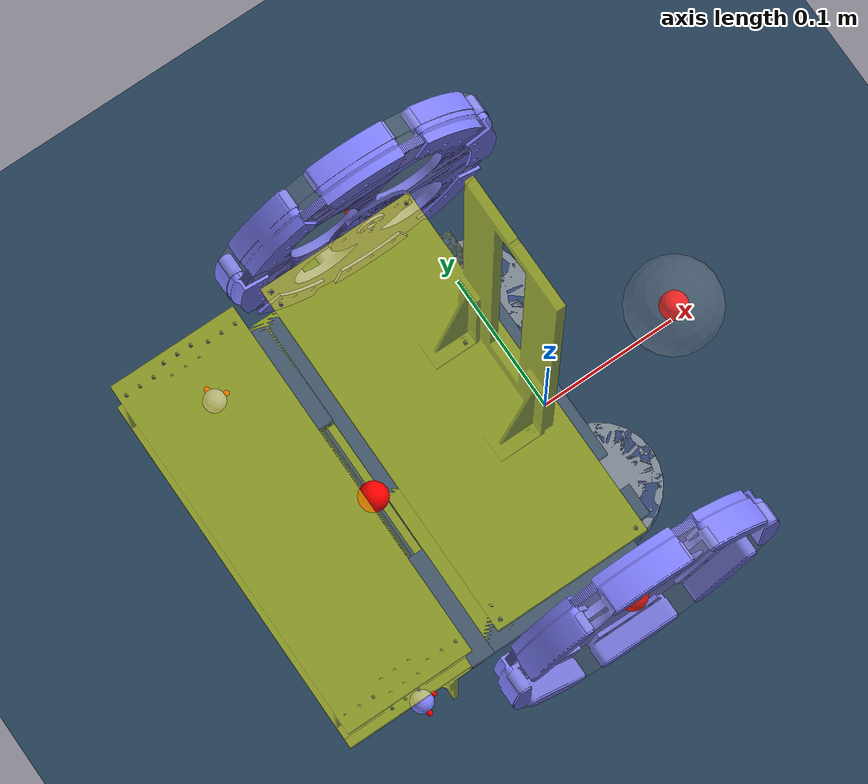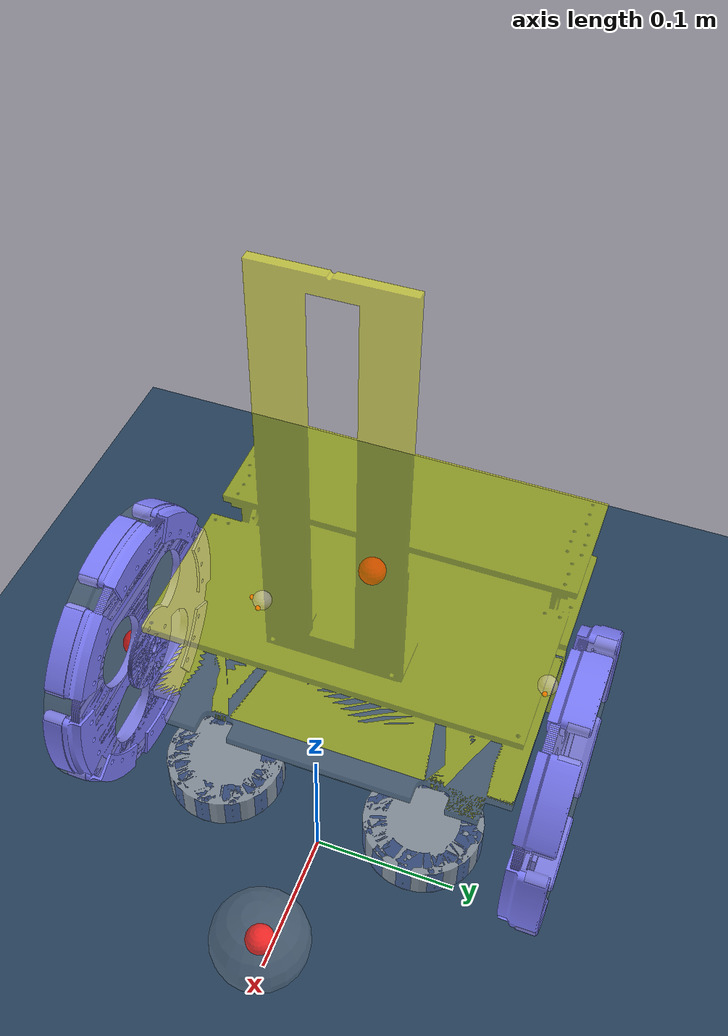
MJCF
<mujoco model="tennisbot">
  <compiler angle="degree" autolimits="true"/>
  <option gravity="0 0 -9.81" timestep="0.002" />

  <asset>
    <!-- Environment-->
    <texture name="grid" type="2d" builtin="checker" width="512" height="512" rgb1=".1 .2 .3" rgb2=".2 .3 .4"/>
    <material name="grid" texture="grid" texrepeat="1 1" texuniform="true" reflectance=".2"/>

    <!-- Texture-->

    <!-- Mesh -->
    <mesh name="visual_chassis_mesh" file="../mesh/visual/Visual_Chassis.stl" scale="1 1 1"/>
    <mesh name="visual_wheel_mesh" file="../mesh/visual/Visual_Wheel.stl" scale="1 1 1"/>
    <mesh name="visual_friction_wheel_mesh" file="../mesh/visual/Visual_Friction_Wheel.stl" scale="1 1 1"/>

    <mesh name="collision_inlet_base_mesh_1" file="../mesh/collision/Collision_Chassis_InletBase_1_1.stl" scale="1 1 1"/>
    <mesh name="collision_inlet_base_mesh_2" file="../mesh/collision/Collision_Chassis_InletBase_1_2.stl" scale="1 1 1"/>
    <mesh name="collision_inlet_base_mesh_3" file="../mesh/collision/Collision_Chassis_InletBase_1_3.stl" scale="1 1 1"/>

    <mesh name="collision_inlet_passage_mesh_1" file="../mesh/collision/Collision_Chassis_InletPassage_1_1.stl" scale="1 1 1"/>
    <mesh name="collision_inlet_passage_mesh_2" file="../mesh/collision/Collision_Chassis_InletPassage_1_2.stl" scale="1 1 1"/>
    <mesh name="collision_inlet_passage_mesh_3" file="../mesh/collision/Collision_Chassis_InletPassage_1_3.stl" scale="1 1 1"/>
    <mesh name="collision_inlet_passage_mesh_4" file="../mesh/collision/Collision_Chassis_InletPassage_1_4.stl" scale="1 1 1"/>
    <mesh name="collision_inlet_passage_mesh_5" file="../mesh/collision/Collision_Chassis_InletPassage_1_5.stl" scale="1 1 1"/>
    <mesh name="collision_inlet_passage_mesh_6" file="../mesh/collision/Collision_Chassis_InletPassage_1_6.stl" scale="1 1 1"/>

    <mesh name="collision_wheel_mesh" file="../mesh/collision/Collision_WheelSimplified.stl" scale="1 1 1"/>

    <!-- Material-->
    <material name="visual_wheel_material" rgba=".5 .5 1 1"/>
    <material name="collision_wheel_material" rgba=".8 .8 .8 0.1"/>
    <material name="visual_caster_material" rgba=".5 .5 1 1"/>
    <material name="collision_caster_material" rgba=".8 .8 .8 0.1"/>
    <material name="visual_small_marker_material" rgba="1 0 0 1"/>
    <material name="visual_friction_wheel_material" rgba=".5 .5 1 0.2"/>
    <material name="collision_friction_wheel_material" rgba=".8 .8 .8 0.6"/>
    <material name="visual_tennis_ball_material" rgba="0 1 0 0.2"/>
    <material name="collision_tennis_ball_material" rgba=".8 .8 .8 0.1"/>

  </asset>

  <default>
    <joint damping=".03" actuatorfrcrange="-0.5 0.5"/>

    <!-- Wheel-->
    <default class="collision_wheel_geom">
      <geom material="collision_wheel_material"
            type="mesh" mesh="collision_wheel_mesh"
            contype="1" conaffinity="1"
            group="1"
            friction="1.8 0.02 0.002"
            condim="6"
            solref="0.003 1.0"
            solimp="0.9 0.95 0.001"/>
    </default>

    <default class="visual_wheel_geom">
      <geom material="visual_wheel_material"
            type="mesh" mesh="visual_wheel_mesh"
            contype="0" conaffinity="0"
            group="0"/>
    </default>

    <!-- Caster Wheel-->
    <default class="collision_ball_caster_geom">
      <geom material="collision_caster_material"
            type="sphere" size="0.008"
            contype="1" conaffinity="1" group="1"
            friction="1.8 0.002 0.0002"
            condim="3"/>
    </default>

    <default class="visual_ball_caster_geom">
      <geom material="visual_caster_material"
            type="sphere" size="0.008"
            contype="0" conaffinity="0" group="0"/>
    </default>

    <default class="visual_ball_caster_marker_geom">
      <geom material="visual_small_marker_material"
            pos="0.009 0 0"
            type="sphere" size="0.002"
            contype="0" conaffinity="0" group="0"/>
    </default>

    <!-- Friction Wheel-->
    <default class="collision_friction_wheel_geom">
      <geom material="collision_friction_wheel_material"
            type="cylinder" size="0.041 0.012"
            contype="1" conaffinity="1"
            group="1"
            friction="1.8 0.02 0.002"
            condim="6"
            solref="0.003 1.0"
            solimp="0.9 0.95 0.001"/>
    </default>

    <default class="visual_friction_wheel_geom">
      <geom material="visual_friction_wheel_material"
            type="mesh" mesh="visual_friction_wheel_mesh"
            contype="0" conaffinity="0" group="0"/>
    </default>

    <!-- Tennis Ball-->
    <default class="collision_tennis_ball_geom">
      <geom material="collision_tennis_ball_material"
        type="sphere" size="0.0335"
        mass="0.057"
        friction="0.8 0.01 0.001"
        solref="0.02 1.0"
        solimp="0.9 0.95 0.001"/>
    </default>

    <default class="visual_tennis_ball_geom">
      <geom material="visual_tennis_ball_material"
            type="sphere" size="0.0335"
            contype="0" conaffinity="0" group="0"/>
    </default>

  </default>

  <worldbody>
    <!-- GROUND-->
    <geom type="plane" size="3 3 .01" material="grid"/>

    <!-- Balls-->
    <body name="tennis_ball_1" pos="0.1 0 .04">
      <freejoint name="ball_1_free_joint"/>

      <inertial
        pos="0 0 0"
        mass="0.0577"
        diaginertia="2.59015e-05 2.59015e-05 2.59015e-05"/>

      <geom name="collision_tennis_ball_1_geom" class="collision_tennis_ball_geom"/>
      <geom class="visual_tennis_ball_geom"/>

      <site name="tennis_ball_1_com" pos="0 0 0" type="sphere" size="0.01 0.01 0.01" rgba="1 0 0 1" />
    </body>

    <!-- ROBOT-->
    <body name="tennisbot" pos="0 0 .09">
      <freejoint name="base_free_joint"/>

      <!-- Chassis-->
      <body name="inlet_chassis" pos="0 0 0">
        <inertial pos="-0.140985 -0.012924 0.047775" mass="5.419723" fullinertia="0.04314 0.04912 0.05842 -0.00417 0.0003509 -0.0005183"/>
        <site name="inlet_chassis_com" pos="-0.140985 -0.012924 0.047775" type="sphere" size="0.01 0.01 0.01" rgba="1 0 0 1" />

        <!-- collision geom-->
        <geom type="mesh" mesh="collision_inlet_base_mesh_1" contype="1" conaffinity="1" group="1" rgba=".8 .8 .8 0.1" friction="1 0.5 0.1"/>
        <geom type="mesh" mesh="collision_inlet_base_mesh_2" contype="1" conaffinity="1" group="1" rgba=".8 .8 .8 0.1" friction="1 0.5 0.1"/>
        <geom type="mesh" mesh="collision_inlet_base_mesh_3" contype="1" conaffinity="1" group="1" rgba=".8 .8 .8 0.1" friction="1 0.5 0.1"/>

        <geom type="mesh" mesh="collision_inlet_passage_mesh_1" contype="1" conaffinity="1" group="1" rgba=".8 .8 .8 0.1" friction="1 0.5 0.1"/>
        <geom type="mesh" mesh="collision_inlet_passage_mesh_2" contype="1" conaffinity="1" group="1" rgba=".8 .8 .8 0.1" friction="1 0.5 0.1"/>
        <geom type="mesh" mesh="collision_inlet_passage_mesh_3" contype="1" conaffinity="1" group="1" rgba=".8 .8 .8 0.1" friction="1 0.5 0.1"/>
        <geom type="mesh" mesh="collision_inlet_passage_mesh_4" contype="1" conaffinity="1" group="1" rgba=".8 .8 .8 0.1" friction="1 0.5 0.1"/>
        <geom type="mesh" mesh="collision_inlet_passage_mesh_5" contype="1" conaffinity="1" group="1" rgba=".8 .8 .8 0.1" friction="1 0.5 0.1"/>
        <geom type="mesh" mesh="collision_inlet_passage_mesh_6" contype="1" conaffinity="1" group="1" rgba=".8 .8 .8 0.1" friction="1 0.5 0.1"/>

        <!-- visual geom-->
        <geom type="mesh" mesh="visual_chassis_mesh" contype="0" conaffinity="0" group="0" rgba="1 1 0 0.5" />
      </body>

      <!-- Wheels-->
      <body name="left_wheel" pos="-0.041 0.137 0.022" zaxis="0 1 0">
        <joint name="left_wheel_joint" type="hinge" axis="0 0 1" damping=".03" actuatorfrcrange="-0.5 0.5"/>
        <inertial pos="0 0 0.013298" mass="0.195438" fullinertia="0.0007126 0.0007126 0.001403 0 0 0"/>
        <site name="left_wheel_com" pos="0 0 0.013298" type="sphere" size="0.01 0.01 0.01" rgba="1 0 0 1" />
        <geom class="collision_wheel_geom"/>
        <geom class="visual_wheel_geom"/>
      </body>

      <body name="right_wheel" pos="-0.041 -0.137 0.022" zaxis="0 -1 0">
        <joint name="right_wheel_joint" type="hinge" axis="0 0 1" damping=".03" actuatorfrcrange="-0.5 0.5"/>
        <inertial pos="0 0 0.013298" mass="0.195438" fullinertia="0.0007126 0.0007126 0.001403 0 0 0"/>
        <site name="right_wheel_com" pos="0 0 0.013298" type="sphere" size="0.01 0.01 0.01" rgba="1 0 0 1" />
        <geom class="collision_wheel_geom"/>
        <geom class="visual_wheel_geom"/>
      </body>

      <!-- Caster Wheels-->
      <body name="left_ball_caster_mount" pos="-0.178 -0.119 -0.062">
        <!-- The rolling ball -->
        <body name="left_ball_caster" pos="0 0 -0.008">
          <!-- Ball joint: fixed center, free orientation -->
          <joint name="left_ball_caster_joint" type="ball"
                 damping="0.001" frictionloss="0.0005"/>

          <inertial pos="0 0 0" mass="0.08" diaginertia="1.2e-5 1.2e-5 1.2e-5"/>

          <geom name="collision_left_ball_caster_geom" class="collision_ball_caster_geom"/>
          <geom name="visual_left_ball_caster_geom" class="visual_ball_caster_geom"/>
          <geom name="visual_left_ball_caster_marker_geom_1" class="visual_ball_caster_marker_geom"/>
          <geom name="visual_left_ball_caster_marker_geom_2" pos="0 -0.009 0" class="visual_ball_caster_marker_geom"/>
        </body>
      </body>

      <body name="right_ball_caster_mount" pos="-0.178 0.119 -0.062">
        <!-- The rolling ball -->
        <body name="right_ball_caster" pos="0 0 -0.008">
          <!-- Ball joint: fixed center, free orientation -->
          <joint name="right_ball_caster_joint" type="ball"
                 damping="0.001" frictionloss="0.0005"/>

          <inertial pos="0 0 0" mass="0.08" diaginertia="1.2e-5 1.2e-5 1.2e-5"/>

          <geom name="collision_right_ball_caster_geom" class="collision_ball_caster_geom"/>
          <geom name="visual_right_ball_caster_geom" class="visual_ball_caster_geom"/>
          <geom name="visual_right_ball_caster_marker_geom" class="visual_ball_caster_marker_geom"/>
          <geom name="visual_right_ball_caster_marker_geom_2" pos="0 0.009 0" class="visual_ball_caster_marker_geom"/>
        </body>
      </body>

      <!-- Friction Wheels-->
      <body name="left_friction_wheel" pos="-0.010365 0.072832 -0.044" zaxis="0 0 1">
        <joint name="left_friction_wheel_joint" type="hinge" axis="0 0 1" damping=".03" actuatorfrcrange="-0.5 0.5"/>
        <inertial pos="0 0 0" mass="0.010" fullinertia="1e-6 1e-6 1e-6 0 0 0"/>
        <geom name="collision_left_friction_wheel_geom" class="collision_friction_wheel_geom"/>
        <geom class="visual_friction_wheel_geom"/>
      </body>

      <body name="right_friction_wheel" pos="-0.010365 -0.072832 -0.044" zaxis="0 0 1">
        <joint name="right_friction_wheel_joint" type="hinge" axis="0 0 1" damping=".03" actuatorfrcrange="-0.5 0.5"/>
        <inertial pos="0 0 0" mass="0.010" fullinertia="1e-6 1e-6 1e-6 0 0 0"/>
        <geom name="collision_right_friction_wheel_geom" class="collision_friction_wheel_geom"/>
        <geom class="visual_friction_wheel_geom"/>
      </body>

      <!-- IMU-->

      <!-- Cameras-->

    </body>
  </worldbody>

  <!-- Actuators-->
  <actuator>
    <motor name="left_wheel_motor" joint="left_wheel_joint" gear="1"/>
    <motor name="right_wheel_motor" joint="right_wheel_joint" gear="1"/>
    <motor name="left_friction_wheel_motor" joint="left_friction_wheel_joint" gear="10"/>
    <motor name="right_friction_wheel_motor" joint="right_friction_wheel_joint" gear="10"/>
  </actuator>

  <!-- Sensors-->
   <sensor>
    <jointpos name="left_wheel_pos" joint="left_wheel_joint"/>
    <jointpos name="right_wheel_pos" joint="right_wheel_joint"/>
    <jointvel name="left_wheel_vel" joint="left_wheel_joint"/>
    <jointvel name="right_wheel_vel" joint="right_wheel_joint"/>
   </sensor>

  <contact>
    <!-- friction wheel vs tennis ball-->
    <pair geom1="collision_left_friction_wheel_geom" geom2="collision_tennis_ball_1_geom"
          friction="2.0 0.02 0.002" condim="6"
          solref="0.02 1"
          solimp="0.6 0.95 0.01 0.5 2"/>
  </contact>

</mujoco>
